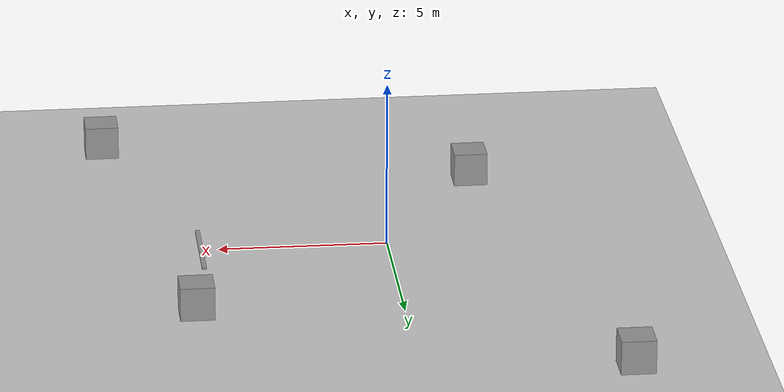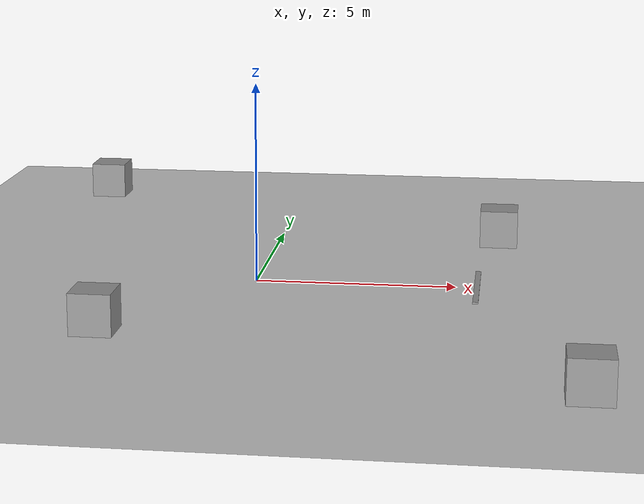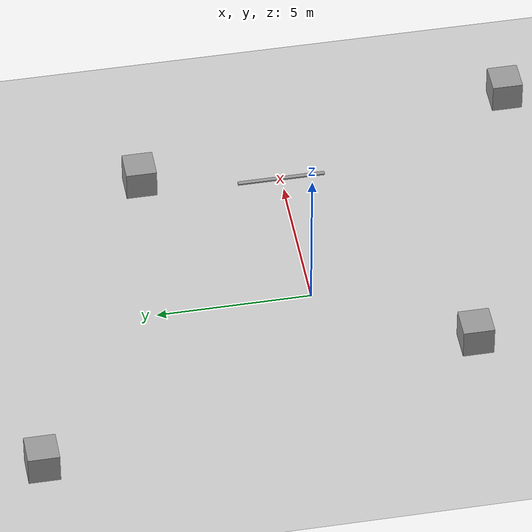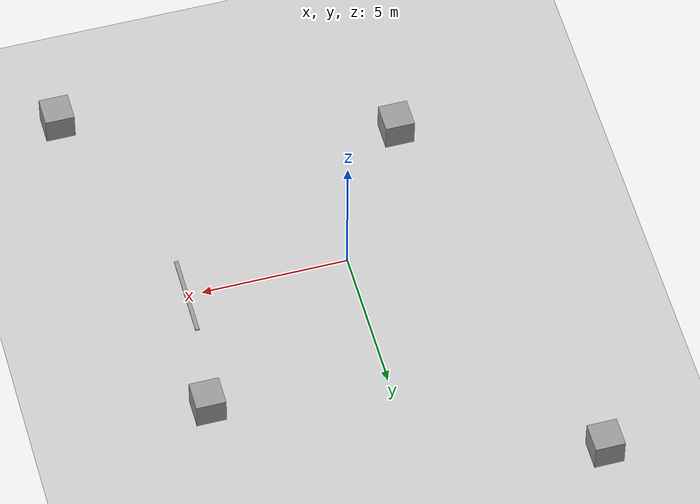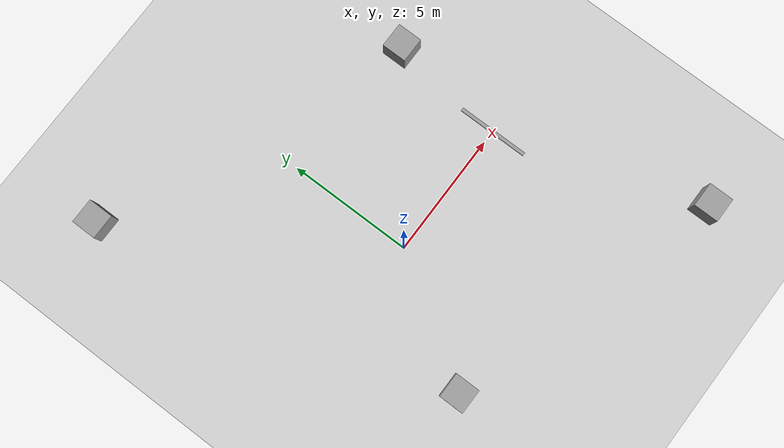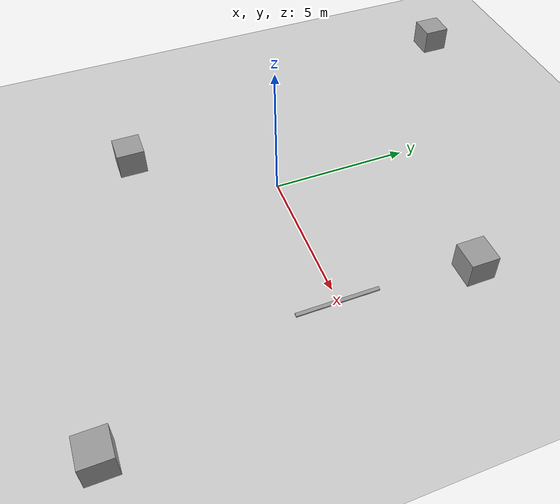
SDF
<sdf version="1.6">
 <world name="default">
  <light name="sun" type="directional">
   <pose>0 0 10 0 -0 0</pose>
   <diffuse>0.8 0.8 0.8 1</diffuse>
   <specular>0.2 0.2 0.2 1</specular>
   <attenuation>
    <range>1000</range>
    <constant>0.9</constant>
    <linear>0.01</linear>
    <quadratic>0.001</quadratic>
   </attenuation>
   <direction>-0.5 0.1 -0.9</direction>
  </light>
  <model name="ground_plane">
   <static>1</static>
   <link name="link">
    <collision name="collision">
     <geometry><plane><normal>0 0 1</normal><size>100 100</size></plane></geometry>
     <surface>
      <contact><collide_bitmask>65535</collide_bitmask></contact>
      <friction><ode><mu>100</mu><mu2>50</mu2></ode></friction>
     </surface>
    </collision>
    <visual name="visual">
     <cast_shadows>0</cast_shadows>
     <geometry><plane><normal>0 0 1</normal><size>100 100</size></plane></geometry>
     <material>
      <script><uri>file://media/materials/scripts/gazebo.material</uri><name>Gazebo/Grey</name></script>
     </material>
    </visual>
   </link>
  </model>
  <gravity>0 0 -9.8</gravity>
  <magnetic_field>6e-06 2.3e-05 -4.2e-05</magnetic_field>
  <atmosphere type="adiabatic"/>
  <physics name="default_physics" default="0" type="ode">
   <max_step_size>0.001</max_step_size>
   <real_time_factor>1</real_time_factor>
   <real_time_update_rate>1000</real_time_update_rate>
  </physics>
  <scene><ambient>0.4 0.4 0.4 1</ambient><background>0.7 0.7 0.7 1</background><shadows>1</shadows></scene>
  <audio><device>default</device></audio>
  <spherical_coordinates>
   <surface_model>EARTH_WGS84</surface_model>
   <latitude_deg>0</latitude_deg>
   <longitude_deg>0</longitude_deg>
   <elevation>0</elevation>
   <heading_deg>0</heading_deg>
  </spherical_coordinates>
  <model name="unit_box">
   <pose>-3 -4.71884 0.499995 1e-05 -0 0</pose>
   <link name="link">
    <inertial>
     <mass>1</mass>
     <inertia>
      <ixx>0.166667</ixx>
      <ixy>0</ixy>
      <ixz>0</ixz>
      <iyy>0.166667</iyy>
      <iyz>0</iyz>
      <izz>0.166667</izz>
     </inertia>
    </inertial>
    <collision name="collision"><geometry><box><size>1 1 1</size></box></geometry></collision>
    <visual name="visual">
     <geometry><box><size>1 1 1</size></box></geometry>
     <material>
      <script><name>Gazebo/Grey</name><uri>file://media/materials/scripts/gazebo.material</uri></script>
     </material>
    </visual>
   </link>
  </model>
  <model name="unit_box_0">
   <pose>7.99559 -7.98273 0.499995 0 1e-05 0</pose>
   <link name="link">
    <inertial>
     <mass>1</mass>
     <inertia>
      <ixx>0.166667</ixx>
      <ixy>0</ixy>
      <ixz>0</ixz>
      <iyy>0.166667</iyy>
      <iyz>0</iyz>
      <izz>0.166667</izz>
     </inertia>
    </inertial>
    <collision name="collision"><geometry><box><size>1 1 1</size></box></geometry></collision>
    <visual name="visual">
     <geometry><box><size>1 1 1</size></box></geometry>
     <material>
      <script><name>Gazebo/Grey</name><uri>file://media/materials/scripts/gazebo.material</uri></script>
     </material>
    </visual>
   </link>
  </model>
  <model name="unit_box_1">
   <pose>5.97543 4.60994 0.499995 1e-05 -0 0</pose>
   <link name="link">
    <inertial>
     <mass>1</mass>
     <inertia>
      <ixx>0.166667</ixx>
      <ixy>0</ixy>
      <ixz>0</ixz>
      <iyy>0.166667</iyy>
      <iyz>0</iyz>
      <izz>0.166667</izz>
     </inertia>
    </inertial>
    <collision name="collision"><geometry><box><size>1 1 1</size></box></geometry></collision>
    <visual name="visual">
     <geometry><box><size>1 1 1</size></box></geometry>
     <material>
      <script><name>Gazebo/Grey</name><uri>file://media/materials/scripts/gazebo.material</uri></script>
     </material>
    </visual>
   </link>
  </model>
  <model name="unit_box_2">
   <pose>-6.00164 9.54415 0.499995 0 1e-05 0</pose>
   <link name="link">
    <inertial>
     <mass>1</mass>
     <inertia>
      <ixx>0.166667</ixx>
      <ixy>0</ixy>
      <ixz>0</ixz>
      <iyy>0.166667</iyy>
      <iyz>0</iyz>
      <izz>0.166667</izz>
     </inertia>
    </inertial>
    <collision name="collision"><geometry><box><size>1 1 1</size></box></geometry></collision>
    <visual name="visual">
     <geometry><box><size>1 1 1</size></box></geometry>
     <material>
      <script><name>Gazebo/Grey</name><uri>file://media/materials/scripts/gazebo.material</uri></script>
     </material>
    </visual>
   </link>
  </model>
  <model name="unit_box_3">
   <link name="link">
    <inertial>
     <mass>1</mass>
     <inertia>
      <ixx>0.166667</ixx>
      <ixy>0</ixy>
      <ixz>0</ixz>
      <iyy>0.166667</iyy>
      <iyz>0</iyz>
      <izz>0.166667</izz>
     </inertia>
    </inertial>
    <visual name="visual">
     <geometry><box><size>0.136967 2.8776 0.047964</size></box></geometry>
     <material>
      <script><name>Gazebo/Grey</name><uri>file://media/materials/scripts/gazebo.material</uri></script>
     </material>
    </visual>
    <collision name="collision">
     <geometry><box><size>0.136967 2.8776 0.047964</size></box></geometry>
     <surface>
      <friction>
       <ode><mu>1</mu><mu2>1</mu2><fdir1>0 0 0</fdir1><slip1>0</slip1><slip2>0</slip2></ode>
       <torsional>
        <coefficient>1</coefficient>
        <patch_radius>0</patch_radius>
        <surface_radius>0</surface_radius>
        <use_patch_radius>1</use_patch_radius>
        <ode><slip>0</slip></ode>
       </torsional>
      </friction>
      <bounce><restitution_coefficient>0</restitution_coefficient><threshold>1e+06</threshold></bounce>
      <contact>
       <collide_without_contact>0</collide_without_contact>
       <collide_without_contact_bitmask>1</collide_without_contact_bitmask>
       <collide_bitmask>1</collide_bitmask>
       <ode>
        <soft_cfm>0</soft_cfm>
        <soft_erp>0.2</soft_erp>
        <kp>1e+13</kp>
        <kd>1</kd>
        <max_vel>0.01</max_vel>
        <min_depth>0</min_depth>
       </ode>
       <bullet>
        <split_impulse>1</split_impulse>
        <split_impulse_penetration_threshold>-0.01</split_impulse_penetration_threshold>
        <soft_cfm>0</soft_cfm>
        <soft_erp>0.2</soft_erp>
        <kp>1e+13</kp>
        <kd>1</kd>
       </bullet>
      </contact>
     </surface>
    </collision>
   </link>
   <static>1</static>
   <pose>5.51511 -0.006082 0.02364 -0.000238 -6e-06 -0.000162</pose>
  </model>
 </world>
</sdf>
